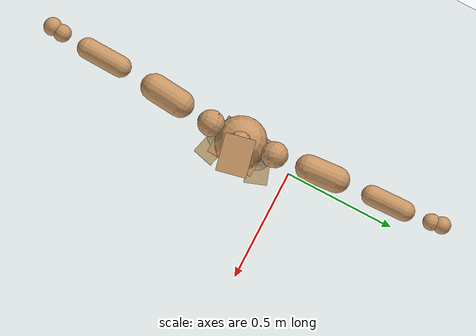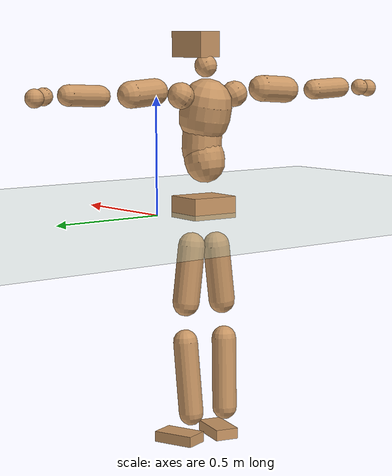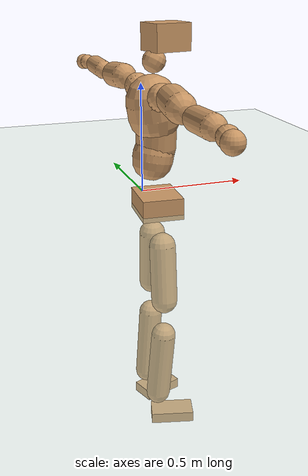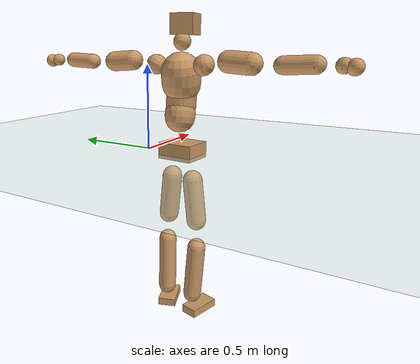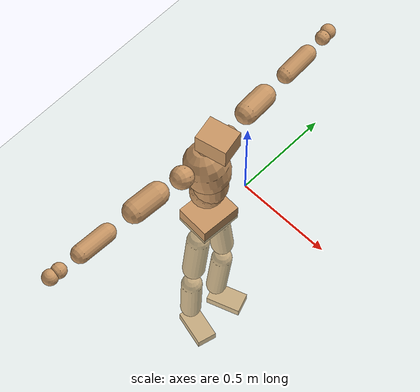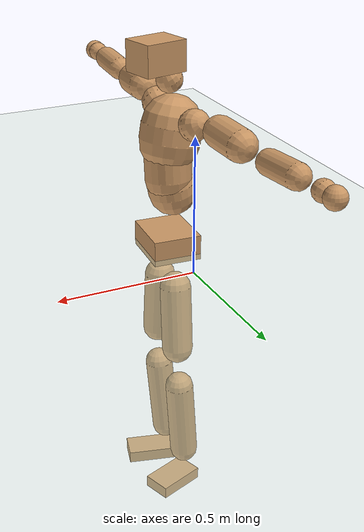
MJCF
<mujoco model="humanoid">
  <compiler coordinate="local" angle="radian"/>
  <default>
    <joint damping="0.0" armature="0.01" stiffness="0.0" limited="true"/>
    <geom conaffinity="1" condim="3" contype="7" margin="0.001" rgba="0.8 0.6 .4 1"/>
  </default>
  <asset>
    <texture type="skybox" builtin="gradient" rgb1=".4 .5 .6" rgb2="0 0 0" width="100" height="100"/>
    <texture builtin="flat" height="1278" mark="cross" markrgb="1 1 1" name="texgeom" random="0.01" rgb1="0.8 0.6 0.4" rgb2="0.8 0.6 0.4" type="cube" width="127"/>
    <texture builtin="checker" height="100" name="texplane" rgb1="0 0 0" rgb2="0.8 0.8 0.8" type="2d" width="100"/>
    <material name="MatPlane" reflectance="0.5" shininess="1" specular="1" texrepeat="60 60" texture="texplane"/>
    <material name="geom" texture="texgeom" texuniform="true"/>
  </asset>
  <worldbody>
    <light cutoff="100" diffuse="1 1 1" dir="-0 0 -1.3" directional="true" exponent="1" pos="0 0 1.3" specular=".1 .1 .1"/>
    <geom conaffinity="1" condim="3" name="floor" pos="0 0 0" rgba="0.8 0.9 0.8 1" size="100 100 .2" type="plane" material="MatPlane"/>
    <body name="Pelvis" pos="0.0007 -0.2433 0.0308">
      <freejoint name="Pelvis"/>
      <geom type="box" contype="1" conaffinity="1" density="5359.374555" pos="-0.0102 0.0007 -0.0080" size="0.089 0.1069 0.0467" quat="0.9995 0.0000 0.0000 -0.0319" name="Pelvis"/>
      <body name="L_Hip" pos="-0.0131 0.0578 -0.0853">
        <joint name="L_Hip_x" type="hinge" pos="0 0 0" axis="1 0 0" stiffness="1600" damping="160" armature="0.02" range="-180.0000 180.0000"/>
        <joint name="L_Hip_y" type="hinge" pos="0 0 0" axis="0 1 0" stiffness="1600" damping="160" armature="0.02" range="-180.0000 180.0000"/>
        <joint name="L_Hip_z" type="hinge" pos="0 0 0" axis="0 0 1" stiffness="1600" damping="160" armature="0.02" range="-180.0000 180.0000"/>
        <geom type="capsule" contype="1" conaffinity="1" density="2040.816327" size="0.058" fromto="0.0019 0.0099 -0.0875 0.0072 0.0380 -0.3362" name="L_Hip"/>
        <body name="L_Knee" pos="0.0091 0.0478 -0.4237">
          <joint name="L_Knee_x" type="hinge" pos="0 0 0" axis="1 0 0" stiffness="1600" damping="160" armature="0.02" range="-180.0000 180.0000"/>
          <joint name="L_Knee_y" type="hinge" pos="0 0 0" axis="0 1 0" stiffness="1600" damping="160" armature="0.02" range="-180.0000 180.0000"/>
          <joint name="L_Knee_z" type="hinge" pos="0 0 0" axis="0 0 1" stiffness="1600" damping="160" armature="0.02" range="-180.0000 180.0000"/>
          <geom type="capsule" contype="1" conaffinity="1" density="1234.567901" size="0.0536" fromto="-0.0066 -0.0028 -0.0833 -0.0317 -0.0132 -0.3976" name="L_Knee"/>
          <body name="L_Ankle" pos="-0.0383 -0.016 -0.4809">
            <joint name="L_Ankle_x" type="hinge" pos="0 0 0" axis="1 0 0" stiffness="1600" damping="160" armature="0.02" range="-180.0000 180.0000"/>
            <joint name="L_Ankle_y" type="hinge" pos="0 0 0" axis="0 1 0" stiffness="1600" damping="160" armature="0.02" range="-180.0000 180.0000"/>
            <joint name="L_Ankle_z" type="hinge" pos="0 0 0" axis="0 0 1" stiffness="1600" damping="160" armature="0.02" range="-180.0000 180.0000"/>
            <geom type="box" contype="1" conaffinity="1" density="999.999973" pos="0.0652 0.0229 -0.0329" size="0.0915 0.0542 0.0233" quat="0.9858 0.0000 0.0000 0.1681" name="L_Ankle"/>
            <body name="L_Toe" pos="0.1304 0.0458 -0.0658">
              <joint name="L_Toe_x" type="hinge" pos="0 0 0" axis="1 0 0" stiffness="1000" damping="100" armature="0.02" range="-180.0000 180.0000"/>
              <joint name="L_Toe_y" type="hinge" pos="0 0 0" axis="0 1 0" stiffness="1000" damping="100" armature="0.02" range="-180.0000 180.0000"/>
              <joint name="L_Toe_z" type="hinge" pos="0 0 0" axis="0 0 1" stiffness="1000" damping="100" armature="0.02" range="-180.0000 180.0000"/>
              <geom type="box" contype="1" conaffinity="1" density="8281097.958974" pos="0.0000 0.0000 0.0336" size="0.0011 0.0025 0.0012" quat="0.9850 0.0000 0.0000 0.1724" name="L_Toe"/>
            </body>
          </body>
        </body>
      </body>
      <body name="R_Hip" pos="-0.0095 -0.0589 -0.0951">
        <joint name="R_Hip_x" type="hinge" pos="0 0 0" axis="1 0 0" stiffness="1600" damping="160" armature="0.02" range="-180.0000 180.0000"/>
        <joint name="R_Hip_y" type="hinge" pos="0 0 0" axis="0 1 0" stiffness="1600" damping="160" armature="0.02" range="-180.0000 180.0000"/>
        <joint name="R_Hip_z" type="hinge" pos="0 0 0" axis="0 0 1" stiffness="1600" damping="160" armature="0.02" range="-180.0000 180.0000"/>
        <geom type="capsule" contype="1" conaffinity="1" density="2040.816327" size="0.0576" fromto="-0.0007 -0.0105 -0.0870 -0.0026 -0.0406 -0.3361" name="R_Hip"/>
        <body name="R_Knee" pos="-0.0033 -0.0511 -0.423">
          <joint name="R_Knee_x" type="hinge" pos="0 0 0" axis="1 0 0" stiffness="1600" damping="160" armature="0.02" range="-180.0000 180.0000"/>
          <joint name="R_Knee_y" type="hinge" pos="0 0 0" axis="0 1 0" stiffness="1600" damping="160" armature="0.02" range="-180.0000 180.0000"/>
          <joint name="R_Knee_z" type="hinge" pos="0 0 0" axis="0 0 1" stiffness="1600" damping="160" armature="0.02" range="-180.0000 180.0000"/>
          <geom type="capsule" contype="1" conaffinity="1" density="1234.567901" size="0.0539" fromto="-0.0059 0.0037 -0.0836 -0.0277 0.0175 -0.3920" name="R_Knee"/>
          <body name="R_Ankle" pos="-0.0336 0.0212 -0.4756">
            <joint name="R_Ankle_x" type="hinge" pos="0 0 0" axis="1 0 0" stiffness="1600" damping="160" armature="0.02" range="-180.0000 180.0000"/>
            <joint name="R_Ankle_y" type="hinge" pos="0 0 0" axis="0 1 0" stiffness="1600" damping="160" armature="0.02" range="-180.0000 180.0000"/>
            <joint name="R_Ankle_z" type="hinge" pos="0 0 0" axis="0 0 1" stiffness="1600" damping="160" armature="0.02" range="-180.0000 180.0000"/>
            <geom type="box" contype="1" conaffinity="1" density="1000.000004" pos="0.0692 -0.0181 -0.0358" size="0.0964 0.0516 0.024" quat="0.9919 0.0000 0.0000 -0.1274" name="R_Ankle"/>
            <body name="R_Toe" pos="0.1383 -0.0361 -0.0715">
              <joint name="R_Toe_x" type="hinge" pos="0 0 0" axis="1 0 0" stiffness="1000" damping="100" armature="0.02" range="-180.0000 180.0000"/>
              <joint name="R_Toe_y" type="hinge" pos="0 0 0" axis="0 1 0" stiffness="1000" damping="100" armature="0.02" range="-180.0000 180.0000"/>
              <joint name="R_Toe_z" type="hinge" pos="0 0 0" axis="0 0 1" stiffness="1000" damping="100" armature="0.02" range="-180.0000 180.0000"/>
              <geom type="box" contype="1" conaffinity="1" density="8506848.909495" pos="0.0000 0.0000 0.0357" size="0.0012 0.0025 0.0012" quat="0.9929 0.0000 0.0000 -0.1190" name="R_Toe"/>
            </body>
          </body>
        </body>
      </body>
      <body name="Torso" pos="-0.0389 0.0051 0.1325">
        <joint name="Torso_x" type="hinge" pos="0 0 0" axis="1 0 0" stiffness="2000" damping="200" armature="0.02" range="-180.0000 180.0000"/>
        <joint name="Torso_y" type="hinge" pos="0 0 0" axis="0 1 0" stiffness="2000" damping="200" armature="0.02" range="-180.0000 180.0000"/>
        <joint name="Torso_z" type="hinge" pos="0 0 0" axis="0 0 1" stiffness="2000" damping="200" armature="0.02" range="-180.0000 180.0000"/>
        <geom type="capsule" contype="1" conaffinity="1" density="2040.816327" size="0.0871" fromto="0.0175 0.0027 0.0853 0.0108 0.0017 0.0526" name="Torso"/>
        <body name="Spine" pos="0.0284 0.0044 0.1379">
          <joint name="Spine_x" type="hinge" pos="0 0 0" axis="1 0 0" stiffness="2000" damping="200" armature="0.02" range="-180.0000 180.0000"/>
          <joint name="Spine_y" type="hinge" pos="0 0 0" axis="0 1 0" stiffness="2000" damping="200" armature="0.02" range="-180.0000 180.0000"/>
          <joint name="Spine_z" type="hinge" pos="0 0 0" axis="0 0 1" stiffness="2000" damping="200" armature="0.02" range="-180.0000 180.0000"/>
          <geom type="capsule" contype="1" conaffinity="1" density="2040.816327" size="0.0859" fromto="0.0012 -0.0057 0.0857 -0.0004 0.0020 -0.0304" name="Spine"/>
          <body name="Chest" pos="0.0008 -0.0037 0.0554">
            <joint name="Chest_x" type="hinge" pos="0 0 0" axis="1 0 0" stiffness="2000" damping="200" armature="0.02" range="-180.0000 180.0000"/>
            <joint name="Chest_y" type="hinge" pos="0 0 0" axis="0 1 0" stiffness="2000" damping="200" armature="0.02" range="-180.0000 180.0000"/>
            <joint name="Chest_z" type="hinge" pos="0 0 0" axis="0 0 1" stiffness="2000" damping="200" armature="0.02" range="-180.0000 180.0000"/>
            <geom type="capsule" contype="1" conaffinity="1" density="2040.816327" size="0.1101" fromto="-0.0206 -0.0060 0.1080 -0.0093 -0.0027 0.0489" name="Chest"/>
            <body name="Neck" pos="-0.0389 -0.0133 0.2256">
              <joint name="Neck_x" type="hinge" pos="0 0 0" axis="1 0 0" stiffness="1000" damping="100" armature="0.02" range="-180.0000 180.0000"/>
              <joint name="Neck_y" type="hinge" pos="0 0 0" axis="0 1 0" stiffness="1000" damping="100" armature="0.02" range="-180.0000 180.0000"/>
              <joint name="Neck_z" type="hinge" pos="0 0 0" axis="0 0 1" stiffness="1000" damping="100" armature="0.02" range="-180.0000 180.0000"/>
              <geom type="capsule" contype="1" conaffinity="1" density="1000" size="0.0479" fromto="0.0260 0.0048 0.0441 0.0270 0.0050 0.0458" name="Neck"/>
              <body name="Head" pos="0.0529 0.0098 0.0898">
                <joint name="Head_x" type="hinge" pos="0 0 0" axis="1 0 0" stiffness="1000" damping="100" armature="0.02" range="-180.0000 180.0000"/>
                <joint name="Head_y" type="hinge" pos="0 0 0" axis="0 1 0" stiffness="1000" damping="100" armature="0.02" range="-180.0000 180.0000"/>
                <joint name="Head_z" type="hinge" pos="0 0 0" axis="0 0 1" stiffness="1000" damping="100" armature="0.02" range="-180.0000 180.0000"/>
                <geom type="box" contype="1" conaffinity="1" density="2249.999937" pos="0.0275 0.0059 0.0459" size="0.0797 0.0642 0.0552" quat="0.9944 0.0000 0.0000 0.1056" name="Head"/>
              </body>
            </body>
            <body name="L_Thorax" pos="-0.025 0.0785 0.1227">
              <joint name="L_Thorax_x" type="hinge" pos="0 0 0" axis="1 0 0" stiffness="1000" damping="100" armature="0.02" range="-180.0000 180.0000"/>
              <joint name="L_Thorax_y" type="hinge" pos="0 0 0" axis="0 1 0" stiffness="1000" damping="100" armature="0.02" range="-180.0000 180.0000"/>
              <joint name="L_Thorax_z" type="hinge" pos="0 0 0" axis="0 0 1" stiffness="1000" damping="100" armature="0.02" range="-180.0000 180.0000"/>
              <geom type="capsule" contype="1" conaffinity="1" density="1000" size="0.056" fromto="-0.0099 0.0634 0.0250 -0.0102 0.0652 0.0258" name="L_Thorax"/>
              <body name="L_Shoulder" pos="-0.0201 0.1286 0.0508">
                <joint name="L_Shoulder_x" type="hinge" pos="0 0 0" axis="1 0 0" stiffness="1000" damping="100" armature="0.02" range="-720.0000 720.0000"/>
                <joint name="L_Shoulder_y" type="hinge" pos="0 0 0" axis="0 1 0" stiffness="1000" damping="100" armature="0.02" range="-720.0000 720.0000"/>
                <joint name="L_Shoulder_z" type="hinge" pos="0 0 0" axis="0 0 1" stiffness="1000" damping="100" armature="0.02" range="-720.0000 720.0000"/>
                <geom type="capsule" contype="1" conaffinity="1" density="1000" size="0.056" fromto="-0.0069 0.0856 -0.0056 -0.0169 0.2114 -0.0138" name="L_Shoulder"/>
                <body name="L_Elbow" pos="-0.0238 0.2969 -0.0193">
                  <joint name="L_Elbow_x" type="hinge" pos="0 0 0" axis="1 0 0" stiffness="1000" damping="100" armature="0.02" range="-720.0000 720.0000"/>
                  <joint name="L_Elbow_y" type="hinge" pos="0 0 0" axis="0 1 0" stiffness="1000" damping="100" armature="0.02" range="-720.0000 720.0000"/>
                  <joint name="L_Elbow_z" type="hinge" pos="0 0 0" axis="0 0 1" stiffness="1000" damping="100" armature="0.02" range="-720.0000 720.0000"/>
                  <geom type="capsule" contype="1" conaffinity="1" density="1000" size="0.0431" fromto="-0.0024 0.0730 0.0034 -0.0075 0.2241 0.0105" name="L_Elbow"/>
                  <body name="L_Wrist" pos="-0.01 0.2971 0.014">
                    <joint name="L_Wrist_x" type="hinge" pos="0 0 0" axis="1 0 0" stiffness="600" damping="60" armature="0.02" range="-180.0000 180.0000"/>
                    <joint name="L_Wrist_y" type="hinge" pos="0 0 0" axis="0 1 0" stiffness="600" damping="60" armature="0.02" range="-180.0000 180.0000"/>
                    <joint name="L_Wrist_z" type="hinge" pos="0 0 0" axis="0 0 1" stiffness="600" damping="60" armature="0.02" range="-180.0000 180.0000"/>
                    <geom type="capsule" contype="1" conaffinity="1" density="1000" size="0.0358" fromto="-0.0082 0.0449 -0.0051 -0.0086 0.0468 -0.0054" name="L_Wrist"/>
                    <body name="L_Hand" pos="-0.0167 0.0917 -0.0105">
                      <joint name="L_Hand_x" type="hinge" pos="0 0 0" axis="1 0 0" stiffness="600" damping="60" armature="0.02" range="-180.0000 180.0000"/>
                      <joint name="L_Hand_y" type="hinge" pos="0 0 0" axis="0 1 0" stiffness="600" damping="60" armature="0.02" range="-180.0000 180.0000"/>
                      <joint name="L_Hand_z" type="hinge" pos="0 0 0" axis="0 0 1" stiffness="600" damping="60" armature="0.02" range="-180.0000 180.0000"/>
                      <geom type="sphere" contype="1" conaffinity="1" density="1000" size="0.0374" pos="0.0000 0.0000 0.0000" name="L_Hand"/>
                    </body>
                  </body>
                </body>
              </body>
            </body>
            <body name="R_Thorax" pos="-0.026 -0.0913 0.1222">
              <joint name="R_Thorax_x" type="hinge" pos="0 0 0" axis="1 0 0" stiffness="1000" damping="100" armature="0.02" range="-180.0000 180.0000"/>
              <joint name="R_Thorax_y" type="hinge" pos="0 0 0" axis="0 1 0" stiffness="1000" damping="100" armature="0.02" range="-180.0000 180.0000"/>
              <joint name="R_Thorax_z" type="hinge" pos="0 0 0" axis="0 0 1" stiffness="1000" damping="100" armature="0.02" range="-180.0000 180.0000"/>
              <geom type="capsule" contype="1" conaffinity="1" density="1000" size="0.0565" fromto="-0.0040 -0.0593 0.0263 -0.0041 -0.0612 0.0271" name="R_Thorax"/>
              <body name="R_Shoulder" pos="-0.0081 -0.1205 0.0534">
                <joint name="R_Shoulder_x" type="hinge" pos="0 0 0" axis="1 0 0" stiffness="1000" damping="100" armature="0.02" range="-720.0000 720.0000"/>
                <joint name="R_Shoulder_y" type="hinge" pos="0 0 0" axis="0 1 0" stiffness="1000" damping="100" armature="0.02" range="-720.0000 720.0000"/>
                <joint name="R_Shoulder_z" type="hinge" pos="0 0 0" axis="0 0 1" stiffness="1000" damping="100" armature="0.02" range="-720.0000 720.0000"/>
                <geom type="capsule" contype="1" conaffinity="1" density="1000" size="0.058" fromto="-0.0081 -0.0875 -0.0055 -0.0199 -0.2159 -0.0136" name="R_Shoulder"/>
                <body name="R_Elbow" pos="-0.028 -0.3034 -0.0191">
                  <joint name="R_Elbow_x" type="hinge" pos="0 0 0" axis="1 0 0" stiffness="1000" damping="100" armature="0.02" range="-720.0000 720.0000"/>
                  <joint name="R_Elbow_y" type="hinge" pos="0 0 0" axis="0 1 0" stiffness="1000" damping="100" armature="0.02" range="-720.0000 720.0000"/>
                  <joint name="R_Elbow_z" type="hinge" pos="0 0 0" axis="0 0 1" stiffness="1000" damping="100" armature="0.02" range="-720.0000 720.0000"/>
                  <geom type="capsule" contype="1" conaffinity="1" density="1000" size="0.0447" fromto="-0.0021 -0.0746 0.0031 -0.0065 -0.2310 0.0096" name="R_Elbow"/>
                  <body name="R_Wrist" pos="-0.0086 -0.3055 0.0127">
                    <joint name="R_Wrist_x" type="hinge" pos="0 0 0" axis="1 0 0" stiffness="600" damping="60" armature="0.02" range="-180.0000 180.0000"/>
                    <joint name="R_Wrist_y" type="hinge" pos="0 0 0" axis="0 1 0" stiffness="600" damping="60" armature="0.02" range="-180.0000 180.0000"/>
                    <joint name="R_Wrist_z" type="hinge" pos="0 0 0" axis="0 0 1" stiffness="600" damping="60" armature="0.02" range="-180.0000 180.0000"/>
                    <geom type="capsule" contype="1" conaffinity="1" density="1000" size="0.0372" fromto="-0.0054 -0.0468 -0.0044 -0.0056 -0.0488 -0.0046" name="R_Wrist"/>
                    <body name="R_Hand" pos="-0.011 -0.0957 -0.009">
                      <joint name="R_Hand_x" type="hinge" pos="0 0 0" axis="1 0 0" stiffness="600" damping="60" armature="0.02" range="-180.0000 180.0000"/>
                      <joint name="R_Hand_y" type="hinge" pos="0 0 0" axis="0 1 0" stiffness="600" damping="60" armature="0.02" range="-180.0000 180.0000"/>
                      <joint name="R_Hand_z" type="hinge" pos="0 0 0" axis="0 0 1" stiffness="600" damping="60" armature="0.02" range="-180.0000 180.0000"/>
                      <geom type="sphere" contype="1" conaffinity="1" density="1000" size="0.0388" pos="0.0000 0.0000 0.0000" name="R_Hand"/>
                    </body>
                  </body>
                </body>
              </body>
            </body>
          </body>
        </body>
      </body>
    </body>
  </worldbody>
  <actuator>
    <motor name="L_Hip_x" joint="L_Hip_x" gear="500"/>
    <motor name="L_Hip_y" joint="L_Hip_y" gear="500"/>
    <motor name="L_Hip_z" joint="L_Hip_z" gear="500"/>
    <motor name="L_Knee_x" joint="L_Knee_x" gear="500"/>
    <motor name="L_Knee_y" joint="L_Knee_y" gear="500"/>
    <motor name="L_Knee_z" joint="L_Knee_z" gear="500"/>
    <motor name="L_Ankle_x" joint="L_Ankle_x" gear="500"/>
    <motor name="L_Ankle_y" joint="L_Ankle_y" gear="500"/>
    <motor name="L_Ankle_z" joint="L_Ankle_z" gear="500"/>
    <motor name="L_Toe_x" joint="L_Toe_x" gear="500"/>
    <motor name="L_Toe_y" joint="L_Toe_y" gear="500"/>
    <motor name="L_Toe_z" joint="L_Toe_z" gear="500"/>
    <motor name="R_Hip_x" joint="R_Hip_x" gear="500"/>
    <motor name="R_Hip_y" joint="R_Hip_y" gear="500"/>
    <motor name="R_Hip_z" joint="R_Hip_z" gear="500"/>
    <motor name="R_Knee_x" joint="R_Knee_x" gear="500"/>
    <motor name="R_Knee_y" joint="R_Knee_y" gear="500"/>
    <motor name="R_Knee_z" joint="R_Knee_z" gear="500"/>
    <motor name="R_Ankle_x" joint="R_Ankle_x" gear="500"/>
    <motor name="R_Ankle_y" joint="R_Ankle_y" gear="500"/>
    <motor name="R_Ankle_z" joint="R_Ankle_z" gear="500"/>
    <motor name="R_Toe_x" joint="R_Toe_x" gear="500"/>
    <motor name="R_Toe_y" joint="R_Toe_y" gear="500"/>
    <motor name="R_Toe_z" joint="R_Toe_z" gear="500"/>
    <motor name="Torso_x" joint="Torso_x" gear="500"/>
    <motor name="Torso_y" joint="Torso_y" gear="500"/>
    <motor name="Torso_z" joint="Torso_z" gear="500"/>
    <motor name="Spine_x" joint="Spine_x" gear="500"/>
    <motor name="Spine_y" joint="Spine_y" gear="500"/>
    <motor name="Spine_z" joint="Spine_z" gear="500"/>
    <motor name="Chest_x" joint="Chest_x" gear="500"/>
    <motor name="Chest_y" joint="Chest_y" gear="500"/>
    <motor name="Chest_z" joint="Chest_z" gear="500"/>
    <motor name="Neck_x" joint="Neck_x" gear="500"/>
    <motor name="Neck_y" joint="Neck_y" gear="500"/>
    <motor name="Neck_z" joint="Neck_z" gear="500"/>
    <motor name="Head_x" joint="Head_x" gear="500"/>
    <motor name="Head_y" joint="Head_y" gear="500"/>
    <motor name="Head_z" joint="Head_z" gear="500"/>
    <motor name="L_Thorax_x" joint="L_Thorax_x" gear="500"/>
    <motor name="L_Thorax_y" joint="L_Thorax_y" gear="500"/>
    <motor name="L_Thorax_z" joint="L_Thorax_z" gear="500"/>
    <motor name="L_Shoulder_x" joint="L_Shoulder_x" gear="500"/>
    <motor name="L_Shoulder_y" joint="L_Shoulder_y" gear="500"/>
    <motor name="L_Shoulder_z" joint="L_Shoulder_z" gear="500"/>
    <motor name="L_Elbow_x" joint="L_Elbow_x" gear="500"/>
    <motor name="L_Elbow_y" joint="L_Elbow_y" gear="500"/>
    <motor name="L_Elbow_z" joint="L_Elbow_z" gear="500"/>
    <motor name="L_Wrist_x" joint="L_Wrist_x" gear="500"/>
    <motor name="L_Wrist_y" joint="L_Wrist_y" gear="500"/>
    <motor name="L_Wrist_z" joint="L_Wrist_z" gear="500"/>
    <motor name="L_Hand_x" joint="L_Hand_x" gear="500"/>
    <motor name="L_Hand_y" joint="L_Hand_y" gear="500"/>
    <motor name="L_Hand_z" joint="L_Hand_z" gear="500"/>
    <motor name="R_Thorax_x" joint="R_Thorax_x" gear="500"/>
    <motor name="R_Thorax_y" joint="R_Thorax_y" gear="500"/>
    <motor name="R_Thorax_z" joint="R_Thorax_z" gear="500"/>
    <motor name="R_Shoulder_x" joint="R_Shoulder_x" gear="500"/>
    <motor name="R_Shoulder_y" joint="R_Shoulder_y" gear="500"/>
    <motor name="R_Shoulder_z" joint="R_Shoulder_z" gear="500"/>
    <motor name="R_Elbow_x" joint="R_Elbow_x" gear="500"/>
    <motor name="R_Elbow_y" joint="R_Elbow_y" gear="500"/>
    <motor name="R_Elbow_z" joint="R_Elbow_z" gear="500"/>
    <motor name="R_Wrist_x" joint="R_Wrist_x" gear="500"/>
    <motor name="R_Wrist_y" joint="R_Wrist_y" gear="500"/>
    <motor name="R_Wrist_z" joint="R_Wrist_z" gear="500"/>
    <motor name="R_Hand_x" joint="R_Hand_x" gear="500"/>
    <motor name="R_Hand_y" joint="R_Hand_y" gear="500"/>
    <motor name="R_Hand_z" joint="R_Hand_z" gear="500"/>
  </actuator>
  <contact>
    <exclude body1="Torso" body2="Chest"/>
    <exclude body1="Head" body2="Chest"/>
    <exclude body1="R_Knee" body2="R_Toe"/>
    <exclude body1="R_Knee" body2="L_Ankle"/>
    <exclude body1="R_Knee" body2="L_Toe"/>
    <exclude body1="L_Knee" body2="L_Toe"/>
    <exclude body1="L_Knee" body2="R_Ankle"/>
    <exclude body1="L_Knee" body2="R_Toe"/>
    <exclude body1="L_Shoulder" body2="Chest"/>
    <exclude body1="R_Shoulder" body2="Chest"/>
  </contact>
  <sensor/>
  <size njmax="700" nconmax="700"/>
</mujoco>
